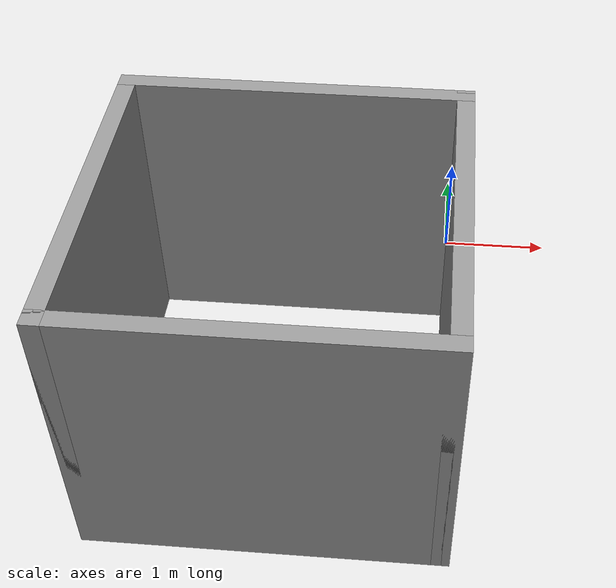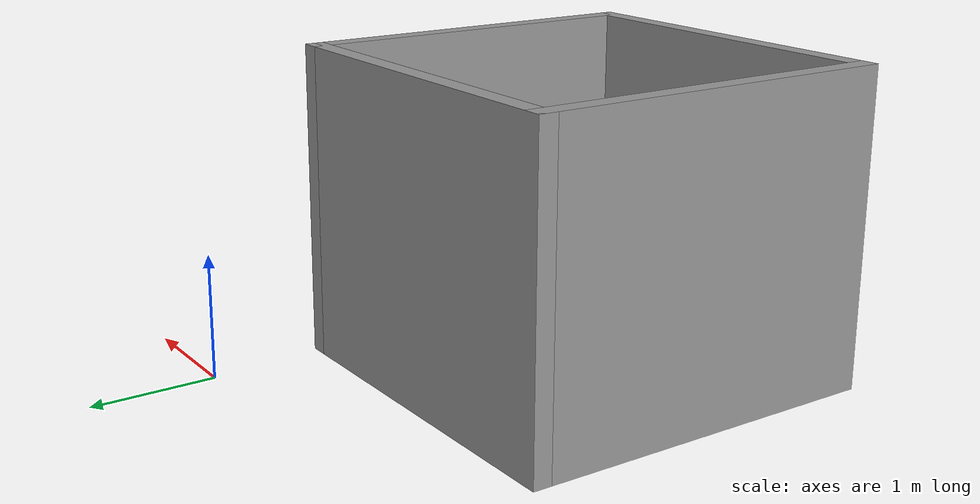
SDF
<?xml version='1.0'?>
<sdf version='1.7'>
  <model name='square2'>
    <pose>-1.385 -1.9675 0 0 -0 0</pose>
    <link name='Wall_0'>
      <collision name='Wall_0_Collision'>
        <geometry>
          <box>
            <size>3 0.15 2.5</size>
          </box>
        </geometry>
        <pose>0 0 1.25 0 -0 0</pose>
      </collision>
      <visual name='Wall_0_Visual'>
        <pose>0 0 1.25 0 -0 0</pose>
        <geometry>
          <box>
            <size>3 0.15 2.5</size>
          </box>
        </geometry>
        <material>
          <script>
            <uri>file://media/materials/scripts/gazebo.material</uri>
            <name>Gazebo/Grey</name>
          </script>
          <ambient>1 1 1 1</ambient>
        </material>
        <meta>
          <layer>0</layer>
        </meta>
      </visual>
      <pose>-1.425 -0.4675 0 0 -0 -1.5708</pose>
    </link>
    <link name='Wall_1'>
      <collision name='Wall_1_Collision'>
        <geometry>
          <box>
            <size>3 0.15 2.5</size>
          </box>
        </geometry>
        <pose>0 0 1.25 0 -0 0</pose>
      </collision>
      <visual name='Wall_1_Visual'>
        <pose>0 0 1.25 0 -0 0</pose>
        <geometry>
          <box>
            <size>3 0.15 2.5</size>
          </box>
        </geometry>
        <material>
          <script>
            <uri>file://media/materials/scripts/gazebo.material</uri>
            <name>Gazebo/Grey</name>
          </script>
          <ambient>1 1 1 1</ambient>
        </material>
        <meta>
          <layer>0</layer>
        </meta>
      </visual>
      <pose>0 -1.8925 0 0 -0 0</pose>
    </link>
    <link name='Wall_2'>
      <collision name='Wall_2_Collision'>
        <geometry>
          <box>
            <size>3 0.15 2.5</size>
          </box>
        </geometry>
        <pose>0 0 1.25 0 -0 0</pose>
      </collision>
      <visual name='Wall_2_Visual'>
        <pose>0 0 1.25 0 -0 0</pose>
        <geometry>
          <box>
            <size>3 0.15 2.5</size>
          </box>
        </geometry>
        <material>
          <script>
            <uri>file://media/materials/scripts/gazebo.material</uri>
            <name>Gazebo/Grey</name>
          </script>
          <ambient>1 1 1 1</ambient>
        </material>
        <meta>
          <layer>0</layer>
        </meta>
      </visual>
      <pose>1.425 -0.4675 0 0 -0 1.5708</pose>
    </link>
    <link name='Wall_3'>
      <collision name='Wall_3_Collision'>
        <geometry>
          <box>
            <size>3 0.15 2.5</size>
          </box>
        </geometry>
        <pose>0 0 1.25 0 -0 0</pose>
      </collision>
      <visual name='Wall_3_Visual'>
        <pose>0 0 1.25 0 -0 0</pose>
        <geometry>
          <box>
            <size>3 0.15 2.5</size>
          </box>
        </geometry>
        <material>
          <script>
            <uri>file://media/materials/scripts/gazebo.material</uri>
            <name>Gazebo/Grey</name>
          </script>
          <ambient>1 1 1 1</ambient>
        </material>
        <meta>
          <layer>0</layer>
        </meta>
      </visual>
      <pose>0 0.9575 0 0 -0 3.14159</pose>
    </link>
    <static>1</static>
  </model>
</sdf>
